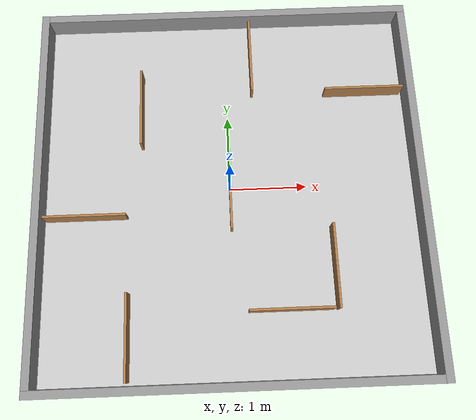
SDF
<sdf version="1.6">
 <world name="default">
  <light name="sun" type="directional">
   <pose>0 0 10 0 -0 0</pose>
   <diffuse>0.8 0.8 0.8 1</diffuse>
   <specular>0.2 0.2 0.2 1</specular>
   <attenuation>
    <range>1000</range>
    <constant>0.9</constant>
    <linear>0.01</linear>
    <quadratic>0.001</quadratic>
   </attenuation>
   <direction>-0.5 0.1 -0.9</direction>
  </light>
  <gravity>0 0 -9.8</gravity>
  <magnetic_field>6e-06 2.3e-05 -4.2e-05</magnetic_field>
  <atmosphere type="adiabatic"/>
  <physics name="default_physics" default="0" type="ode">
   <max_step_size>0.001</max_step_size>
   <real_time_factor>1</real_time_factor>
   <real_time_update_rate>1000</real_time_update_rate>
  </physics>
  <scene><ambient>0.4 0.4 0.4 1</ambient><background>0.7 0.7 0.7 1</background><shadows>1</shadows></scene>
  <spherical_coordinates>
   <surface_model>EARTH_WGS84</surface_model>
   <latitude_deg>0</latitude_deg>
   <longitude_deg>0</longitude_deg>
   <elevation>0</elevation>
   <heading_deg>0</heading_deg>
  </spherical_coordinates>
  <include><uri>model://navigation</uri></include>
  <include><uri>model://arena_walls</uri></include>
 </world>
</sdf>

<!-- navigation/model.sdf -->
<sdf version="1.4">
<model name="navigation">
  <static>true</static>
    <link name="floor">
      <collision name="collision">
        <geometry>
          <plane>
            <normal>0 0 1</normal>
            <size>5.0 5.0</size>
          </plane>
        </geometry>
        <surface>
          <friction>
            <ode>
              <mu>100</mu>
              <mu2>50</mu2>
            </ode>
          </friction>
        </surface>
      </collision>
      <visual name="visual">
        <cast_shadows>false</cast_shadows>
        <geometry>
          <plane>
            <normal>0 0 1</normal>
            <size>5.0 5.0</size>
          </plane>
        </geometry>
        <material>
          <script>
            <uri>model://navigation/materials/scripts</uri>
            <uri>model://navigation/materials/textures</uri>
            <name>navigationFloor/Image</name>
          </script>
        </material>
      </visual>
    </link>
    <link name='wall_1'>
      <pose frame=''>0.34413 1.83641 0.125 0 0 0</pose>
      <collision name='coll'>
        <geometry>
          <box>
            <size>0.03 1.05 0.25</size>
          </box>
        </geometry>
      </collision>
      <visual name='vis'>
        <geometry>
          <box>
            <size>0.03 1.05 0.25</size>
          </box>
        </geometry>
        <material>
          <script>
            <uri>file://media/materials/scripts/gazebo.material</uri>
            <name>Gazebo/Wood</name>
          </script>
        </material>
      </visual>
    </link>
    <link name='wall_2'>
      <pose frame=''>1.84412 1.29641 0.125 0 0 0</pose>
      <collision name='coll'>
        <geometry>
          <box>
            <size>1.05 0.03 0.25</size>
          </box>
        </geometry>
      </collision>
      <visual name='vis'>
        <geometry>
          <box>
            <size>1.05 0.03 0.25</size>
          </box>
        </geometry>
        <material>
          <script>
            <uri>file://media/materials/scripts/gazebo.material</uri>
            <name>Gazebo/Wood</name>
          </script>
        </material>
      </visual>
    </link>
    <link name='wall_3'>
      <pose frame=''>-1.14124 1.12333 0.125 0 0 0</pose>
      <collision name='coll'>
        <geometry>
          <box>
            <size>0.03 1.05 0.25</size>
          </box>
        </geometry>
      </collision>
      <visual name='vis'>
        <geometry>
          <box>
            <size>0.03 1.05 0.25</size>
          </box>
        </geometry>
        <material>
          <script>
            <uri>file://media/materials/scripts/gazebo.material</uri>
            <name>Gazebo/Wood</name>
          </script>
        </material>
      </visual>
    </link>
    <link name='wall_4'>
      <pose frame=''>0 -0.04072 0.125 0 0 0</pose>
      <collision name='coll'>
        <geometry>
          <box>
            <size>0.03 1.05 0.25</size>
          </box>
        </geometry>
      </collision>
      <visual name='vis'>
        <geometry>
          <box>
            <size>0.03 1.05 0.25</size>
          </box>
        </geometry>
        <material>
          <script>
            <uri>file://media/materials/scripts/gazebo.material</uri>
            <name>Gazebo/Wood</name>
          </script>
        </material>
      </visual>
    </link>
    <link name='wall_5'>
      <pose frame=''>-1.85277 -0.34134 0.125 0 0 0</pose>
      <collision name='coll'>
        <geometry>
          <box>
            <size>1.05 0.03 0.25</size>
          </box>
        </geometry>
      </collision>
      <visual name='vis'>
        <geometry>
          <box>
            <size>1.05 0.03 0.25</size>
          </box>
        </geometry>
        <material>
          <script>
            <uri>file://media/materials/scripts/gazebo.material</uri>
            <name>Gazebo/Wood</name>
          </script>
        </material>
      </visual>
    </link>
    <link name='wall_6'>
      <pose frame=''>1.27590 -1.07230 0.125 0 0 0</pose>
      <collision name='coll'>
        <geometry>
          <box>
            <size>0.03 1.05 0.25</size>
          </box>
        </geometry>
      </collision>
      <visual name='vis'>
        <geometry>
          <box>
            <size>0.03 1.05 0.25</size>
          </box>
        </geometry>
        <material>
          <script>
            <uri>file://media/materials/scripts/gazebo.material</uri>
            <name>Gazebo/Wood</name>
          </script>
        </material>
      </visual>
    </link>
    <link name='wall_7'>
      <pose frame=''>0.69590 -1.58230 0.125 0 0 0</pose>
      <collision name='coll'>
        <geometry>
          <box>
            <size>1.05 0.03 0.25</size>
          </box>
        </geometry>
      </collision>
      <visual name='vis'>
        <geometry>
          <box>
            <size>1.05 0.03 0.25</size>
          </box>
        </geometry>
        <material>
          <script>
            <uri>file://media/materials/scripts/gazebo.material</uri>
            <name>Gazebo/Wood</name>
          </script>
        </material>
      </visual>
    </link>
    <link name='wall_8'>
      <pose frame=''>-1.31277 -1.84133 0.125 0 0 0</pose>
      <collision name='coll'>
        <geometry>
          <box>
            <size>0.03 1.05 0.25</size>
          </box>
        </geometry>
      </collision>
      <visual name='vis'>
        <geometry>
          <box>
            <size>0.03 1.05 0.25</size>
          </box>
        </geometry>
        <material>
          <script>
            <uri>file://media/materials/scripts/gazebo.material</uri>
            <name>Gazebo/Wood</name>
          </script>
        </material>
      </visual>
    </link>
  </model>
</sdf>

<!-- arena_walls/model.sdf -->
<sdf version='1.6'>
  <model name='arena_walls'>
    <pose frame=''>0 0 0.15 0 0 0</pose>
    <link name='Right_Wall'>
      <collision name='Right_Wall_Collision'>
        <geometry>
          <box>
            <size>4.90 0.10 0.3</size>
          </box>
        </geometry>
        <pose frame=''>0 0 0 0 0 0</pose>
      </collision>
      <visual name='Right_Wall_Visual'>
        <pose frame=''>0 0 0 0 0 0</pose>
        <geometry>
          <box>
            <size>4.90 0.10 0.3</size>
          </box>
        </geometry>
        <material>
          <script>
            <uri>file://media/materials/scripts/gazebo.material</uri>
            <name>Gazebo/Grey</name>
          </script>
          <ambient>1 1 1 1</ambient>
        </material>
      </visual>
      <pose frame=''>0.05 2.45 0 0 0 0</pose>
    </link>
    <link name='Back_Wall'>
      <collision name='Back_Wall_Collision'>
        <geometry>
          <box>
            <size>4.90 0.10 0.3</size>
          </box>
        </geometry>
        <pose frame=''>0 0 0 0 0 0</pose>
      </collision>
      <visual name='Back_Wall_Visual'>
        <pose frame=''>0 0 0 0 0 0</pose>
        <geometry>
          <box>
            <size>4.90 0.10 0.3</size>
          </box>
        </geometry>
        <material>
          <script>
            <uri>file://media/materials/scripts/gazebo.material</uri>
            <name>Gazebo/Grey</name>
          </script>
          <ambient>1 1 1 1</ambient>
        </material>
      </visual>
      <pose frame=''>-2.45 0.05 0 0 0 1.5708</pose>
    </link>
    <link name='Left_Wall'>
      <collision name='Left_Wall_Collision'>
        <geometry>
          <box>
            <size>4.90 0.10 0.3</size>
          </box>
        </geometry>
        <pose frame=''>0 0 0 0 0 0</pose>
      </collision>
      <visual name='Left_Wall_Visual'>
        <pose frame=''>0 0 0 0 0 0</pose>
        <geometry>
          <box>
            <size>4.90 0.10 0.3</size>
          </box>
        </geometry>
        <material>
          <script>
            <uri>file://media/materials/scripts/gazebo.material</uri>
            <name>Gazebo/Grey</name>
          </script>
          <ambient>1 1 1 1</ambient>
        </material>
      </visual>
      <pose frame=''>-0.05 -2.45 0 0 0 0</pose>
    </link>
    <link name='Front_Wall'>
      <collision name='Front_Wall_Collision'>
        <geometry>
          <box>
            <size>4.90 0.10 0.3</size>
          </box>
        </geometry>
        <pose frame=''>0 0 0 0 0 0</pose>
      </collision>
      <visual name='Front_Wall_Visual'>
        <pose frame=''>0 0 0 0 0 0</pose>
        <geometry>
          <box>
            <size>4.90 0.10 0.3</size>
          </box>
        </geometry>
        <material>
          <script>
            <uri>file://media/materials/scripts/gazebo.material</uri>
            <name>Gazebo/Grey</name>
          </script>
          <ambient>1 1 1 1</ambient>
        </material>
      </visual>
      <pose frame=''>2.45 -0.05 0 0 0 1.5708</pose>
    </link>
    <static>1</static>
  </model>
</sdf>
